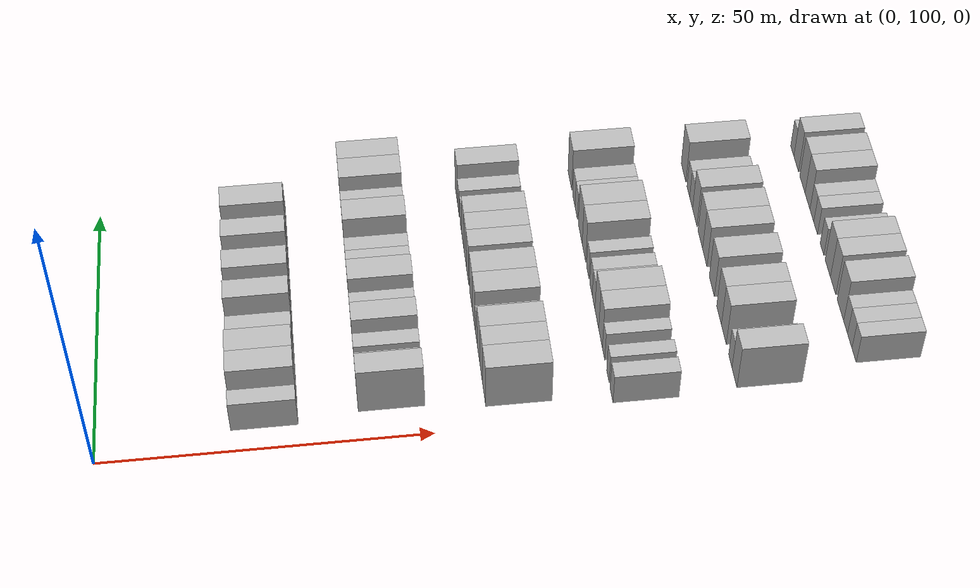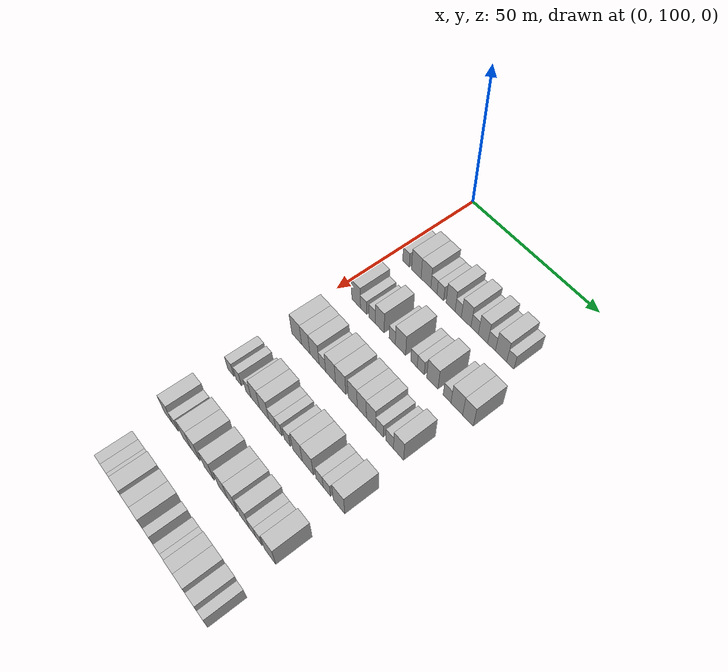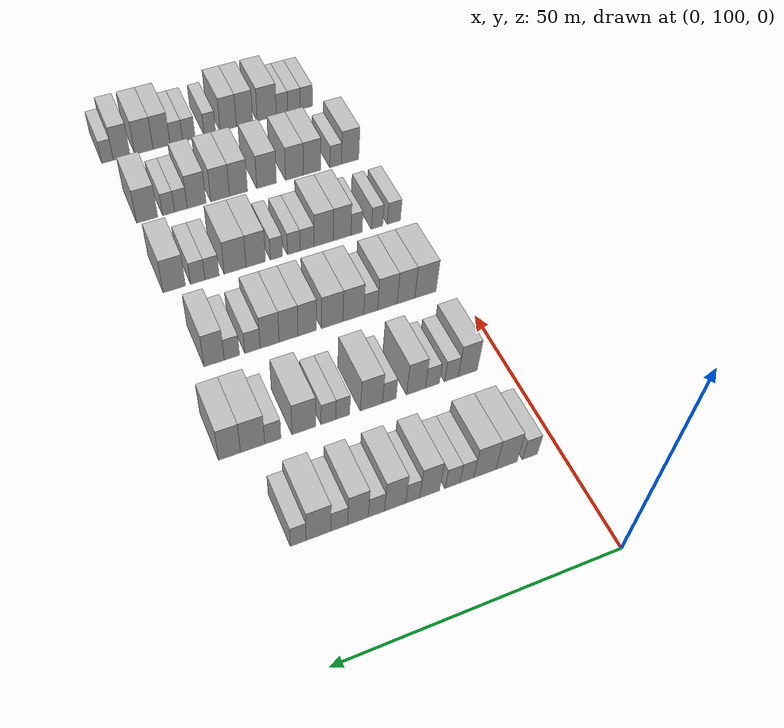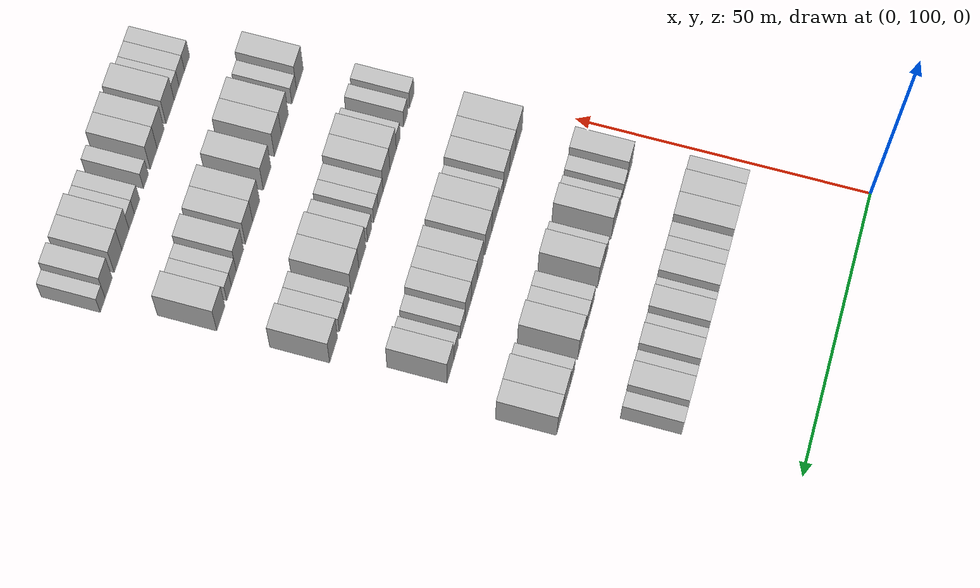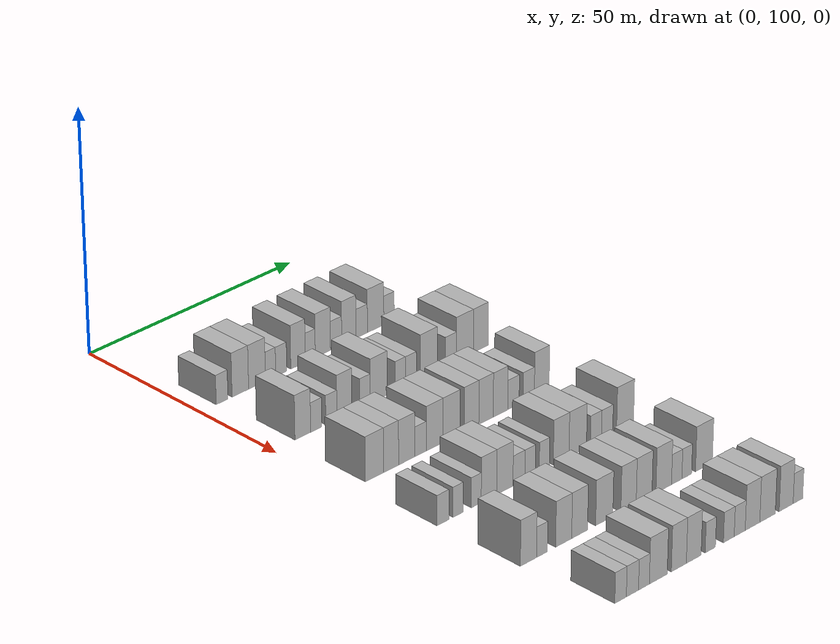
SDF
<sdf version="1.6">
 <world name="default">
  <model name="building_109">
   <static>1</static>
   <pose>25.0000 105.2955 0 0.000000 0.000000 0.000000</pose>
   <link name="link">
    <pose>0 0 3.00 0 0 0</pose>
    <collision name="collision"><geometry><box><size>10.0000 2.8303 6.0000</size></box></geometry></collision>
    <visual name="visual">
     <cast_shadows>0</cast_shadows>
     <geometry><box><size>10.0000 2.8303 6.0000</size></box></geometry>
     <material>
      <script>
       <uri>model://HANNAS_wall/materials/scripts</uri>
       <uri>model://HANNAS_wall/materials/textures</uri>
       <name>vrc/HANNAS_wall</name>
      </script>
     </material>
    </visual>
   </link>
  </model>
  <model name="building_110">
   <static>1</static>
   <pose>25.0000 109.7250 0 0.000000 0.000000 0.000000</pose>
   <link name="link">
    <pose>0 0 4.50 0 0 0</pose>
    <collision name="collision"><geometry><box><size>10.0000 4.0286 9.0000</size></box></geometry></collision>
    <visual name="visual">
     <cast_shadows>0</cast_shadows>
     <geometry><box><size>10.0000 4.0286 9.0000</size></box></geometry>
     <material>
      <script>
       <uri>model://HANNAS_wall/materials/scripts</uri>
       <uri>model://HANNAS_wall/materials/textures</uri>
       <name>vrc/HANNAS_wall</name>
      </script>
     </material>
    </visual>
   </link>
  </model>
  <model name="building_111">
   <static>1</static>
   <pose>25.0000 113.8031 0 0.000000 0.000000 0.000000</pose>
   <link name="link">
    <pose>0 0 4.50 0 0 0</pose>
    <collision name="collision"><geometry><box><size>10.0000 4.1276 9.0000</size></box></geometry></collision>
    <visual name="visual">
     <cast_shadows>0</cast_shadows>
     <geometry><box><size>10.0000 4.1276 9.0000</size></box></geometry>
     <material>
      <script>
       <uri>model://HANNAS_wall/materials/scripts</uri>
       <uri>model://HANNAS_wall/materials/textures</uri>
       <name>vrc/HANNAS_wall</name>
      </script>
     </material>
    </visual>
   </link>
  </model>
  <model name="building_112">
   <static>1</static>
   <pose>25.0000 117.1305 0 0.000000 0.000000 0.000000</pose>
   <link name="link">
    <pose>0 0 3.00 0 0 0</pose>
    <collision name="collision"><geometry><box><size>10.0000 2.5274 6.0000</size></box></geometry></collision>
    <visual name="visual">
     <cast_shadows>0</cast_shadows>
     <geometry><box><size>10.0000 2.5274 6.0000</size></box></geometry>
     <material>
      <script>
       <uri>model://HANNAS_wall/materials/scripts</uri>
       <uri>model://HANNAS_wall/materials/textures</uri>
       <name>vrc/HANNAS_wall</name>
      </script>
     </material>
    </visual>
   </link>
  </model>
  <model name="building_113">
   <static>1</static>
   <pose>25.0000 119.7565 0 0.000000 0.000000 0.000000</pose>
   <link name="link">
    <pose>0 0 3.00 0 0 0</pose>
    <collision name="collision"><geometry><box><size>10.0000 2.7247 6.0000</size></box></geometry></collision>
    <visual name="visual">
     <cast_shadows>0</cast_shadows>
     <geometry><box><size>10.0000 2.7247 6.0000</size></box></geometry>
     <material>
      <script>
       <uri>model://HANNAS_wall/materials/scripts</uri>
       <uri>model://HANNAS_wall/materials/textures</uri>
       <name>vrc/HANNAS_wall</name>
      </script>
     </material>
    </visual>
   </link>
  </model>
  <model name="building_114">
   <static>1</static>
   <pose>25.0000 123.9321 0 0.000000 0.000000 0.000000</pose>
   <link name="link">
    <pose>0 0 4.50 0 0 0</pose>
    <collision name="collision"><geometry><box><size>10.0000 3.6265 9.0000</size></box></geometry></collision>
    <visual name="visual">
     <cast_shadows>0</cast_shadows>
     <geometry><box><size>10.0000 3.6265 9.0000</size></box></geometry>
     <material>
      <script>
       <uri>model://HANNAS_wall/materials/scripts</uri>
       <uri>model://HANNAS_wall/materials/textures</uri>
       <name>vrc/HANNAS_wall</name>
      </script>
     </material>
    </visual>
   </link>
  </model>
  <model name="building_115">
   <static>1</static>
   <pose>25.0000 126.9914 0 0.000000 0.000000 0.000000</pose>
   <link name="link">
    <pose>0 0 3.00 0 0 0</pose>
    <collision name="collision"><geometry><box><size>10.0000 2.4921 6.0000</size></box></geometry></collision>
    <visual name="visual">
     <cast_shadows>0</cast_shadows>
     <geometry><box><size>10.0000 2.4921 6.0000</size></box></geometry>
     <material>
      <script>
       <uri>model://HANNAS_wall/materials/scripts</uri>
       <uri>model://HANNAS_wall/materials/textures</uri>
       <name>vrc/HANNAS_wall</name>
      </script>
     </material>
    </visual>
   </link>
  </model>
  <model name="building_116">
   <static>1</static>
   <pose>25.0000 130.1455 0 0.000000 0.000000 0.000000</pose>
   <link name="link">
    <pose>0 0 4.50 0 0 0</pose>
    <collision name="collision"><geometry><box><size>10.0000 3.8161 9.0000</size></box></geometry></collision>
    <visual name="visual">
     <cast_shadows>0</cast_shadows>
     <geometry><box><size>10.0000 3.8161 9.0000</size></box></geometry>
     <material>
      <script>
       <uri>model://HANNAS_wall/materials/scripts</uri>
       <uri>model://HANNAS_wall/materials/textures</uri>
       <name>vrc/HANNAS_wall</name>
      </script>
     </material>
    </visual>
   </link>
  </model>
  <model name="building_117">
   <static>1</static>
   <pose>25.0000 133.4818 0 0.000000 0.000000 0.000000</pose>
   <link name="link">
    <pose>0 0 3.00 0 0 0</pose>
    <collision name="collision"><geometry><box><size>10.0000 2.8565 6.0000</size></box></geometry></collision>
    <visual name="visual">
     <cast_shadows>0</cast_shadows>
     <geometry><box><size>10.0000 2.8565 6.0000</size></box></geometry>
     <material>
      <script>
       <uri>model://HANNAS_wall/materials/scripts</uri>
       <uri>model://HANNAS_wall/materials/textures</uri>
       <name>vrc/HANNAS_wall</name>
      </script>
     </material>
    </visual>
   </link>
  </model>
  <model name="building_118">
   <static>1</static>
   <pose>25.0000 136.7175 0 0.000000 0.000000 0.000000</pose>
   <link name="link">
    <pose>0 0 4.50 0 0 0</pose>
    <collision name="collision"><geometry><box><size>10.0000 3.6147 9.0000</size></box></geometry></collision>
    <visual name="visual">
     <cast_shadows>0</cast_shadows>
     <geometry><box><size>10.0000 3.6147 9.0000</size></box></geometry>
     <material>
      <script>
       <uri>model://HANNAS_wall/materials/scripts</uri>
       <uri>model://HANNAS_wall/materials/textures</uri>
       <name>vrc/HANNAS_wall</name>
      </script>
     </material>
    </visual>
   </link>
  </model>
  <model name="building_119">
   <static>1</static>
   <pose>25.0000 139.9865 0 0.000000 0.000000 0.000000</pose>
   <link name="link">
    <pose>0 0 3.00 0 0 0</pose>
    <collision name="collision"><geometry><box><size>10.0000 2.9234 6.0000</size></box></geometry></collision>
    <visual name="visual">
     <cast_shadows>0</cast_shadows>
     <geometry><box><size>10.0000 2.9234 6.0000</size></box></geometry>
     <material>
      <script>
       <uri>model://HANNAS_wall/materials/scripts</uri>
       <uri>model://HANNAS_wall/materials/textures</uri>
       <name>vrc/HANNAS_wall</name>
      </script>
     </material>
    </visual>
   </link>
  </model>
  <model name="building_120">
   <static>1</static>
   <pose>25.0000 143.5577 0 0.000000 0.000000 0.000000</pose>
   <link name="link">
    <pose>0 0 4.50 0 0 0</pose>
    <collision name="collision"><geometry><box><size>10.0000 4.2189 9.0000</size></box></geometry></collision>
    <visual name="visual">
     <cast_shadows>0</cast_shadows>
     <geometry><box><size>10.0000 4.2189 9.0000</size></box></geometry>
     <material>
      <script>
       <uri>model://HANNAS_wall/materials/scripts</uri>
       <uri>model://HANNAS_wall/materials/textures</uri>
       <name>vrc/HANNAS_wall</name>
      </script>
     </material>
    </visual>
   </link>
  </model>
  <model name="building_121">
   <static>1</static>
   <pose>25.0000 147.0125 0 0.000000 0.000000 0.000000</pose>
   <link name="link">
    <pose>0 0 3.00 0 0 0</pose>
    <collision name="collision"><geometry><box><size>10.0000 2.6907 6.0000</size></box></geometry></collision>
    <visual name="visual">
     <cast_shadows>0</cast_shadows>
     <geometry><box><size>10.0000 2.6907 6.0000</size></box></geometry>
     <material>
      <script>
       <uri>model://HANNAS_wall/materials/scripts</uri>
       <uri>model://HANNAS_wall/materials/textures</uri>
       <name>vrc/HANNAS_wall</name>
      </script>
     </material>
    </visual>
   </link>
  </model>
  <model name="building_291">
   <static>1</static>
   <pose>44.0000 107.2034 0 0.000000 0.000000 0.000000</pose>
   <link name="link">
    <pose>0 0 4.50 0 0 0</pose>
    <collision name="collision"><geometry><box><size>10.0000 3.7939 9.0000</size></box></geometry></collision>
    <visual name="visual">
     <cast_shadows>0</cast_shadows>
     <geometry><box><size>10.0000 3.7939 9.0000</size></box></geometry>
     <material>
      <script>
       <uri>model://HANNAS_wall/materials/scripts</uri>
       <uri>model://HANNAS_wall/materials/textures</uri>
       <name>vrc/HANNAS_wall</name>
      </script>
     </material>
    </visual>
   </link>
  </model>
  <model name="building_292">
   <static>1</static>
   <pose>44.0000 110.4479 0 0.000000 0.000000 0.000000</pose>
   <link name="link">
    <pose>0 0 3.00 0 0 0</pose>
    <collision name="collision"><geometry><box><size>10.0000 2.6950 6.0000</size></box></geometry></collision>
    <visual name="visual">
     <cast_shadows>0</cast_shadows>
     <geometry><box><size>10.0000 2.6950 6.0000</size></box></geometry>
     <material>
      <script>
       <uri>model://HANNAS_wall/materials/scripts</uri>
       <uri>model://HANNAS_wall/materials/textures</uri>
       <name>vrc/HANNAS_wall</name>
      </script>
     </material>
    </visual>
   </link>
  </model>
  <model name="building_293">
   <static>1</static>
   <pose>44.0000 114.1585 0 0.000000 0.000000 0.000000</pose>
   <link name="link">
    <pose>0 0 3.00 0 0 0</pose>
    <collision name="collision"><geometry><box><size>10.0000 2.7262 6.0000</size></box></geometry></collision>
    <visual name="visual">
     <cast_shadows>0</cast_shadows>
     <geometry><box><size>10.0000 2.7262 6.0000</size></box></geometry>
     <material>
      <script>
       <uri>model://HANNAS_wall/materials/scripts</uri>
       <uri>model://HANNAS_wall/materials/textures</uri>
       <name>vrc/HANNAS_wall</name>
      </script>
     </material>
    </visual>
   </link>
  </model>
  <model name="building_294">
   <static>1</static>
   <pose>44.0000 117.3571 0 0.000000 0.000000 0.000000</pose>
   <link name="link">
    <pose>0 0 4.50 0 0 0</pose>
    <collision name="collision"><geometry><box><size>10.0000 3.6711 9.0000</size></box></geometry></collision>
    <visual name="visual">
     <cast_shadows>0</cast_shadows>
     <geometry><box><size>10.0000 3.6711 9.0000</size></box></geometry>
     <material>
      <script>
       <uri>model://HANNAS_wall/materials/scripts</uri>
       <uri>model://HANNAS_wall/materials/textures</uri>
       <name>vrc/HANNAS_wall</name>
      </script>
     </material>
    </visual>
   </link>
  </model>
  <model name="building_295">
   <static>1</static>
   <pose>44.0000 122.4854 0 0.000000 0.000000 0.000000</pose>
   <link name="link">
    <pose>0 0 3.00 0 0 0</pose>
    <collision name="collision"><geometry><box><size>10.0000 2.5854 6.0000</size></box></geometry></collision>
    <visual name="visual">
     <cast_shadows>0</cast_shadows>
     <geometry><box><size>10.0000 2.5854 6.0000</size></box></geometry>
     <material>
      <script>
       <uri>model://HANNAS_wall/materials/scripts</uri>
       <uri>model://HANNAS_wall/materials/textures</uri>
       <name>vrc/HANNAS_wall</name>
      </script>
     </material>
    </visual>
   </link>
  </model>
  <model name="building_296">
   <static>1</static>
   <pose>44.0000 125.8849 0 0.000000 0.000000 0.000000</pose>
   <link name="link">
    <pose>0 0 4.50 0 0 0</pose>
    <collision name="collision"><geometry><box><size>10.0000 4.2137 9.0000</size></box></geometry></collision>
    <visual name="visual">
     <cast_shadows>0</cast_shadows>
     <geometry><box><size>10.0000 4.2137 9.0000</size></box></geometry>
     <material>
      <script>
       <uri>model://HANNAS_wall/materials/scripts</uri>
       <uri>model://HANNAS_wall/materials/textures</uri>
       <name>vrc/HANNAS_wall</name>
      </script>
     </material>
    </visual>
   </link>
  </model>
  <model name="building_297">
   <static>1</static>
   <pose>44.0000 131.2877 0 0.000000 0.000000 0.000000</pose>
   <link name="link">
    <pose>0 0 3.00 0 0 0</pose>
    <collision name="collision"><geometry><box><size>10.0000 2.5919 6.0000</size></box></geometry></collision>
    <visual name="visual">
     <cast_shadows>0</cast_shadows>
     <geometry><box><size>10.0000 2.5919 6.0000</size></box></geometry>
     <material>
      <script>
       <uri>model://HANNAS_wall/materials/scripts</uri>
       <uri>model://HANNAS_wall/materials/textures</uri>
       <name>vrc/HANNAS_wall</name>
      </script>
     </material>
    </visual>
   </link>
  </model>
  <model name="building_298">
   <static>1</static>
   <pose>44.0000 133.9536 0 0.000000 0.000000 0.000000</pose>
   <link name="link">
    <pose>0 0 3.00 0 0 0</pose>
    <collision name="collision"><geometry><box><size>10.0000 2.7399 6.0000</size></box></geometry></collision>
    <visual name="visual">
     <cast_shadows>0</cast_shadows>
     <geometry><box><size>10.0000 2.7399 6.0000</size></box></geometry>
     <material>
      <script>
       <uri>model://HANNAS_wall/materials/scripts</uri>
       <uri>model://HANNAS_wall/materials/textures</uri>
       <name>vrc/HANNAS_wall</name>
      </script>
     </material>
    </visual>
   </link>
  </model>
  <model name="building_299">
   <static>1</static>
   <pose>44.0000 138.4920 0 0.000000 0.000000 0.000000</pose>
   <link name="link">
    <pose>0 0 4.50 0 0 0</pose>
    <collision name="collision"><geometry><box><size>10.0000 4.3369 9.0000</size></box></geometry></collision>
    <visual name="visual">
     <cast_shadows>0</cast_shadows>
     <geometry><box><size>10.0000 4.3369 9.0000</size></box></geometry>
     <material>
      <script>
       <uri>model://HANNAS_wall/materials/scripts</uri>
       <uri>model://HANNAS_wall/materials/textures</uri>
       <name>vrc/HANNAS_wall</name>
      </script>
     </material>
    </visual>
   </link>
  </model>
  <model name="building_300">
   <static>1</static>
   <pose>44.0000 144.1302 0 0.000000 0.000000 0.000000</pose>
   <link name="link">
    <pose>0 0 3.00 0 0 0</pose>
    <collision name="collision"><geometry><box><size>10.0000 2.9395 6.0000</size></box></geometry></collision>
    <visual name="visual">
     <cast_shadows>0</cast_shadows>
     <geometry><box><size>10.0000 2.9395 6.0000</size></box></geometry>
     <material>
      <script>
       <uri>model://HANNAS_wall/materials/scripts</uri>
       <uri>model://HANNAS_wall/materials/textures</uri>
       <name>vrc/HANNAS_wall</name>
      </script>
     </material>
    </visual>
   </link>
  </model>
  <model name="building_301">
   <static>1</static>
   <pose>44.0000 147.7710 0 0.000000 0.000000 0.000000</pose>
   <link name="link">
    <pose>0 0 4.50 0 0 0</pose>
    <collision name="collision"><geometry><box><size>10.0000 4.3421 9.0000</size></box></geometry></collision>
    <visual name="visual">
     <cast_shadows>0</cast_shadows>
     <geometry><box><size>10.0000 4.3421 9.0000</size></box></geometry>
     <material>
      <script>
       <uri>model://HANNAS_wall/materials/scripts</uri>
       <uri>model://HANNAS_wall/materials/textures</uri>
       <name>vrc/HANNAS_wall</name>
      </script>
     </material>
    </visual>
   </link>
  </model>
  <model name="building_302">
   <static>1</static>
   <pose>44.0000 151.8860 0 0.000000 0.000000 0.000000</pose>
   <link name="link">
    <pose>0 0 4.50 0 0 0</pose>
    <collision name="collision"><geometry><box><size>10.0000 3.8879 9.0000</size></box></geometry></collision>
    <visual name="visual">
     <cast_shadows>0</cast_shadows>
     <geometry><box><size>10.0000 3.8879 9.0000</size></box></geometry>
     <material>
      <script>
       <uri>model://HANNAS_wall/materials/scripts</uri>
       <uri>model://HANNAS_wall/materials/textures</uri>
       <name>vrc/HANNAS_wall</name>
      </script>
     </material>
    </visual>
   </link>
  </model>
  <model name="building_459">
   <static>1</static>
   <pose>63.0000 106.3470 0 0.000000 0.000000 0.000000</pose>
   <link name="link">
    <pose>0 0 4.50 0 0 0</pose>
    <collision name="collision"><geometry><box><size>10.0000 4.4157 9.0000</size></box></geometry></collision>
    <visual name="visual">
     <cast_shadows>0</cast_shadows>
     <geometry><box><size>10.0000 4.4157 9.0000</size></box></geometry>
     <material>
      <script>
       <uri>model://HANNAS_wall/materials/scripts</uri>
       <uri>model://HANNAS_wall/materials/textures</uri>
       <name>vrc/HANNAS_wall</name>
      </script>
     </material>
    </visual>
   </link>
  </model>
  <model name="building_460">
   <static>1</static>
   <pose>63.0000 110.3841 0 0.000000 0.000000 0.000000</pose>
   <link name="link">
    <pose>0 0 4.50 0 0 0</pose>
    <collision name="collision"><geometry><box><size>10.0000 3.6585 9.0000</size></box></geometry></collision>
    <visual name="visual">
     <cast_shadows>0</cast_shadows>
     <geometry><box><size>10.0000 3.6585 9.0000</size></box></geometry>
     <material>
      <script>
       <uri>model://HANNAS_wall/materials/scripts</uri>
       <uri>model://HANNAS_wall/materials/textures</uri>
       <name>vrc/HANNAS_wall</name>
      </script>
     </material>
    </visual>
   </link>
  </model>
  <model name="building_461">
   <static>1</static>
   <pose>63.0000 114.2137 0 0.000000 0.000000 0.000000</pose>
   <link name="link">
    <pose>0 0 4.50 0 0 0</pose>
    <collision name="collision"><geometry><box><size>10.0000 4.0007 9.0000</size></box></geometry></collision>
    <visual name="visual">
     <cast_shadows>0</cast_shadows>
     <geometry><box><size>10.0000 4.0007 9.0000</size></box></geometry>
     <material>
      <script>
       <uri>model://HANNAS_wall/materials/scripts</uri>
       <uri>model://HANNAS_wall/materials/textures</uri>
       <name>vrc/HANNAS_wall</name>
      </script>
     </material>
    </visual>
   </link>
  </model>
  <model name="building_462">
   <static>1</static>
   <pose>63.0000 117.6177 0 0.000000 0.000000 0.000000</pose>
   <link name="link">
    <pose>0 0 3.00 0 0 0</pose>
    <collision name="collision"><geometry><box><size>10.0000 2.8072 6.0000</size></box></geometry></collision>
    <visual name="visual">
     <cast_shadows>0</cast_shadows>
     <geometry><box><size>10.0000 2.8072 6.0000</size></box></geometry>
     <material>
      <script>
       <uri>model://HANNAS_wall/materials/scripts</uri>
       <uri>model://HANNAS_wall/materials/textures</uri>
       <name>vrc/HANNAS_wall</name>
      </script>
     </material>
    </visual>
   </link>
  </model>
  <model name="building_463">
   <static>1</static>
   <pose>63.0000 121.1032 0 0.000000 0.000000 0.000000</pose>
   <link name="link">
    <pose>0 0 4.50 0 0 0</pose>
    <collision name="collision"><geometry><box><size>10.0000 4.1639 9.0000</size></box></geometry></collision>
    <visual name="visual">
     <cast_shadows>0</cast_shadows>
     <geometry><box><size>10.0000 4.1639 9.0000</size></box></geometry>
     <material>
      <script>
       <uri>model://HANNAS_wall/materials/scripts</uri>
       <uri>model://HANNAS_wall/materials/textures</uri>
       <name>vrc/HANNAS_wall</name>
      </script>
     </material>
    </visual>
   </link>
  </model>
  <model name="building_464">
   <static>1</static>
   <pose>63.0000 125.3115 0 0.000000 0.000000 0.000000</pose>
   <link name="link">
    <pose>0 0 4.50 0 0 0</pose>
    <collision name="collision"><geometry><box><size>10.0000 4.2528 9.0000</size></box></geometry></collision>
    <visual name="visual">
     <cast_shadows>0</cast_shadows>
     <geometry><box><size>10.0000 4.2528 9.0000</size></box></geometry>
     <material>
      <script>
       <uri>model://HANNAS_wall/materials/scripts</uri>
       <uri>model://HANNAS_wall/materials/textures</uri>
       <name>vrc/HANNAS_wall</name>
      </script>
     </material>
    </visual>
   </link>
  </model>
  <model name="building_465">
   <static>1</static>
   <pose>63.0000 130.2676 0 0.000000 0.000000 0.000000</pose>
   <link name="link">
    <pose>0 0 4.50 0 0 0</pose>
    <collision name="collision"><geometry><box><size>10.0000 3.6593 9.0000</size></box></geometry></collision>
    <visual name="visual">
     <cast_shadows>0</cast_shadows>
     <geometry><box><size>10.0000 3.6593 9.0000</size></box></geometry>
     <material>
      <script>
       <uri>model://HANNAS_wall/materials/scripts</uri>
       <uri>model://HANNAS_wall/materials/textures</uri>
       <name>vrc/HANNAS_wall</name>
      </script>
     </material>
    </visual>
   </link>
  </model>
  <model name="building_466">
   <static>1</static>
   <pose>63.0000 133.9238 0 0.000000 0.000000 0.000000</pose>
   <link name="link">
    <pose>0 0 4.50 0 0 0</pose>
    <collision name="collision"><geometry><box><size>10.0000 3.6532 9.0000</size></box></geometry></collision>
    <visual name="visual">
     <cast_shadows>0</cast_shadows>
     <geometry><box><size>10.0000 3.6532 9.0000</size></box></geometry>
     <material>
      <script>
       <uri>model://HANNAS_wall/materials/scripts</uri>
       <uri>model://HANNAS_wall/materials/textures</uri>
       <name>vrc/HANNAS_wall</name>
      </script>
     </material>
    </visual>
   </link>
  </model>
  <model name="building_467">
   <static>1</static>
   <pose>63.0000 137.5816 0 0.000000 0.000000 0.000000</pose>
   <link name="link">
    <pose>0 0 4.50 0 0 0</pose>
    <collision name="collision"><geometry><box><size>10.0000 3.6623 9.0000</size></box></geometry></collision>
    <visual name="visual">
     <cast_shadows>0</cast_shadows>
     <geometry><box><size>10.0000 3.6623 9.0000</size></box></geometry>
     <material>
      <script>
       <uri>model://HANNAS_wall/materials/scripts</uri>
       <uri>model://HANNAS_wall/materials/textures</uri>
       <name>vrc/HANNAS_wall</name>
      </script>
     </material>
    </visual>
   </link>
  </model>
  <model name="building_468">
   <static>1</static>
   <pose>63.0000 140.8815 0 0.000000 0.000000 0.000000</pose>
   <link name="link">
    <pose>0 0 3.00 0 0 0</pose>
    <collision name="collision"><geometry><box><size>10.0000 2.9375 6.0000</size></box></geometry></collision>
    <visual name="visual">
     <cast_shadows>0</cast_shadows>
     <geometry><box><size>10.0000 2.9375 6.0000</size></box></geometry>
     <material>
      <script>
       <uri>model://HANNAS_wall/materials/scripts</uri>
       <uri>model://HANNAS_wall/materials/textures</uri>
       <name>vrc/HANNAS_wall</name>
      </script>
     </material>
    </visual>
   </link>
  </model>
  <model name="building_469">
   <static>1</static>
   <pose>63.0000 144.8050 0 0.000000 0.000000 0.000000</pose>
   <link name="link">
    <pose>0 0 3.00 0 0 0</pose>
    <collision name="collision"><geometry><box><size>10.0000 2.9095 6.0000</size></box></geometry></collision>
    <visual name="visual">
     <cast_shadows>0</cast_shadows>
     <geometry><box><size>10.0000 2.9095 6.0000</size></box></geometry>
     <material>
      <script>
       <uri>model://HANNAS_wall/materials/scripts</uri>
       <uri>model://HANNAS_wall/materials/textures</uri>
       <name>vrc/HANNAS_wall</name>
      </script>
     </material>
    </visual>
   </link>
  </model>
  <model name="building_470">
   <static>1</static>
   <pose>63.0000 148.1662 0 0.000000 0.000000 0.000000</pose>
   <link name="link">
    <pose>0 0 4.50 0 0 0</pose>
    <collision name="collision"><geometry><box><size>10.0000 3.8130 9.0000</size></box></geometry></collision>
    <visual name="visual">
     <cast_shadows>0</cast_shadows>
     <geometry><box><size>10.0000 3.8130 9.0000</size></box></geometry>
     <material>
      <script>
       <uri>model://HANNAS_wall/materials/scripts</uri>
       <uri>model://HANNAS_wall/materials/textures</uri>
       <name>vrc/HANNAS_wall</name>
      </script>
     </material>
    </visual>
   </link>
  </model>
  <model name="building_638">
   <static>1</static>
   <pose>82.0000 104.1277 0 0.000000 0.000000 0.000000</pose>
   <link name="link">
    <pose>0 0 3.00 0 0 0</pose>
    <collision name="collision"><geometry><box><size>10.0000 2.8570 6.0000</size></box></geometry></collision>
    <visual name="visual">
     <cast_shadows>0</cast_shadows>
     <geometry><box><size>10.0000 2.8570 6.0000</size></box></geometry>
     <material>
      <script>
       <uri>model://HANNAS_wall/materials/scripts</uri>
       <uri>model://HANNAS_wall/materials/textures</uri>
       <name>vrc/HANNAS_wall</name>
      </script>
     </material>
    </visual>
   </link>
  </model>
  <model name="building_639">
   <static>1</static>
   <pose>82.0000 107.7839 0 0.000000 0.000000 0.000000</pose>
   <link name="link">
    <pose>0 0 3.00 0 0 0</pose>
    <collision name="collision"><geometry><box><size>10.0000 2.4553 6.0000</size></box></geometry></collision>
    <visual name="visual">
     <cast_shadows>0</cast_shadows>
     <geometry><box><size>10.0000 2.4553 6.0000</size></box></geometry>
     <material>
      <script>
       <uri>model://HANNAS_wall/materials/scripts</uri>
       <uri>model://HANNAS_wall/materials/textures</uri>
       <name>vrc/HANNAS_wall</name>
      </script>
     </material>
    </visual>
   </link>
  </model>
  <model name="building_640">
   <static>1</static>
   <pose>82.0000 112.2152 0 0.000000 0.000000 0.000000</pose>
   <link name="link">
    <pose>0 0 3.00 0 0 0</pose>
    <collision name="collision"><geometry><box><size>10.0000 2.4074 6.0000</size></box></geometry></collision>
    <visual name="visual">
     <cast_shadows>0</cast_shadows>
     <geometry><box><size>10.0000 2.4074 6.0000</size></box></geometry>
     <material>
      <script>
       <uri>model://HANNAS_wall/materials/scripts</uri>
       <uri>model://HANNAS_wall/materials/textures</uri>
       <name>vrc/HANNAS_wall</name>
      </script>
     </material>
    </visual>
   </link>
  </model>
  <model name="building_641">
   <static>1</static>
   <pose>82.0000 115.3138 0 0.000000 0.000000 0.000000</pose>
   <link name="link">
    <pose>0 0 4.50 0 0 0</pose>
    <collision name="collision"><geometry><box><size>10.0000 3.7897 9.0000</size></box></geometry></collision>
    <visual name="visual">
     <cast_shadows>0</cast_shadows>
     <geometry><box><size>10.0000 3.7897 9.0000</size></box></geometry>
     <material>
      <script>
       <uri>model://HANNAS_wall/materials/scripts</uri>
       <uri>model://HANNAS_wall/materials/textures</uri>
       <name>vrc/HANNAS_wall</name>
      </script>
     </material>
    </visual>
   </link>
  </model>
  <model name="building_642">
   <static>1</static>
   <pose>82.0000 119.2196 0 0.000000 0.000000 0.000000</pose>
   <link name="link">
    <pose>0 0 4.50 0 0 0</pose>
    <collision name="collision"><geometry><box><size>10.0000 4.0219 9.0000</size></box></geometry></collision>
    <visual name="visual">
     <cast_shadows>0</cast_shadows>
     <geometry><box><size>10.0000 4.0219 9.0000</size></box></geometry>
     <material>
      <script>
       <uri>model://HANNAS_wall/materials/scripts</uri>
       <uri>model://HANNAS_wall/materials/textures</uri>
       <name>vrc/HANNAS_wall</name>
      </script>
     </material>
    </visual>
   </link>
  </model>
  <model name="building_643">
   <static>1</static>
   <pose>82.0000 122.7008 0 0.000000 0.000000 0.000000</pose>
   <link name="link">
    <pose>0 0 3.00 0 0 0</pose>
    <collision name="collision"><geometry><box><size>10.0000 2.9405 6.0000</size></box></geometry></collision>
    <visual name="visual">
     <cast_shadows>0</cast_shadows>
     <geometry><box><size>10.0000 2.9405 6.0000</size></box></geometry>
     <material>
      <script>
       <uri>model://HANNAS_wall/materials/scripts</uri>
       <uri>model://HANNAS_wall/materials/textures</uri>
       <name>vrc/HANNAS_wall</name>
      </script>
     </material>
    </visual>
   </link>
  </model>
  <model name="building_644">
   <static>1</static>
   <pose>82.0000 125.4743 0 0.000000 0.000000 0.000000</pose>
   <link name="link">
    <pose>0 0 3.00 0 0 0</pose>
    <collision name="collision"><geometry><box><size>10.0000 2.6064 6.0000</size></box></geometry></collision>
    <visual name="visual">
     <cast_shadows>0</cast_shadows>
     <geometry><box><size>10.0000 2.6064 6.0000</size></box></geometry>
     <material>
      <script>
       <uri>model://HANNAS_wall/materials/scripts</uri>
       <uri>model://HANNAS_wall/materials/textures</uri>
       <name>vrc/HANNAS_wall</name>
      </script>
     </material>
    </visual>
   </link>
  </model>
  <model name="building_645">
   <static>1</static>
   <pose>82.0000 129.0405 0 0.000000 0.000000 0.000000</pose>
   <link name="link">
    <pose>0 0 3.00 0 0 0</pose>
    <collision name="collision"><geometry><box><size>10.0000 2.5259 6.0000</size></box></geometry></collision>
    <visual name="visual">
     <cast_shadows>0</cast_shadows>
     <geometry><box><size>10.0000 2.5259 6.0000</size></box></geometry>
     <material>
      <script>
       <uri>model://HANNAS_wall/materials/scripts</uri>
       <uri>model://HANNAS_wall/materials/textures</uri>
       <name>vrc/HANNAS_wall</name>
      </script>
     </material>
    </visual>
   </link>
  </model>
  <model name="building_646">
   <static>1</static>
   <pose>82.0000 133.2848 0 0.000000 0.000000 0.000000</pose>
   <link name="link">
    <pose>0 0 4.50 0 0 0</pose>
    <collision name="collision"><geometry><box><size>10.0000 3.9629 9.0000</size></box></geometry></collision>
    <visual name="visual">
     <cast_shadows>0</cast_shadows>
     <geometry><box><size>10.0000 3.9629 9.0000</size></box></geometry>
     <material>
      <script>
       <uri>model://HANNAS_wall/materials/scripts</uri>
       <uri>model://HANNAS_wall/materials/textures</uri>
       <name>vrc/HANNAS_wall</name>
      </script>
     </material>
    </visual>
   </link>
  </model>
  <model name="building_647">
   <static>1</static>
   <pose>82.0000 137.4890 0 0.000000 0.000000 0.000000</pose>
   <link name="link">
    <pose>0 0 4.50 0 0 0</pose>
    <collision name="collision"><geometry><box><size>10.0000 4.4456 9.0000</size></box></geometry></collision>
    <visual name="visual">
     <cast_shadows>0</cast_shadows>
     <geometry><box><size>10.0000 4.4456 9.0000</size></box></geometry>
     <material>
      <script>
       <uri>model://HANNAS_wall/materials/scripts</uri>
       <uri>model://HANNAS_wall/materials/textures</uri>
       <name>vrc/HANNAS_wall</name>
      </script>
     </material>
    </visual>
   </link>
  </model>
  <model name="building_648">
   <static>1</static>
   <pose>82.0000 142.1342 0 0.000000 0.000000 0.000000</pose>
   <link name="link">
    <pose>0 0 3.00 0 0 0</pose>
    <collision name="collision"><geometry><box><size>10.0000 2.8447 6.0000</size></box></geometry></collision>
    <visual name="visual">
     <cast_shadows>0</cast_shadows>
     <geometry><box><size>10.0000 2.8447 6.0000</size></box></geometry>
     <material>
      <script>
       <uri>model://HANNAS_wall/materials/scripts</uri>
       <uri>model://HANNAS_wall/materials/textures</uri>
       <name>vrc/HANNAS_wall</name>
      </script>
     </material>
    </visual>
   </link>
  </model>
  <model name="building_649">
   <static>1</static>
   <pose>82.0000 145.0003 0 0.000000 0.000000 0.000000</pose>
   <link name="link">
    <pose>0 0 3.00 0 0 0</pose>
    <collision name="collision"><geometry><box><size>10.0000 2.8876 6.0000</size></box></geometry></collision>
    <visual name="visual">
     <cast_shadows>0</cast_shadows>
     <geometry><box><size>10.0000 2.8876 6.0000</size></box></geometry>
     <material>
      <script>
       <uri>model://HANNAS_wall/materials/scripts</uri>
       <uri>model://HANNAS_wall/materials/textures</uri>
       <name>vrc/HANNAS_wall</name>
      </script>
     </material>
    </visual>
   </link>
  </model>
  <model name="building_650">
   <static>1</static>
   <pose>82.0000 149.6500 0 0.000000 0.000000 0.000000</pose>
   <link name="link">
    <pose>0 0 4.50 0 0 0</pose>
    <collision name="collision"><geometry><box><size>10.0000 4.4118 9.0000</size></box></geometry></collision>
    <visual name="visual">
     <cast_shadows>0</cast_shadows>
     <geometry><box><size>10.0000 4.4118 9.0000</size></box></geometry>
     <material>
      <script>
       <uri>model://HANNAS_wall/materials/scripts</uri>
       <uri>model://HANNAS_wall/materials/textures</uri>
       <name>vrc/HANNAS_wall</name>
      </script>
     </material>
    </visual>
   </link>
  </model>
  <model name="building_811">
   <static>1</static>
   <pose>101.0000 105.4215 0 0.000000 0.000000 0.000000</pose>
   <link name="link">
    <pose>0 0 4.50 0 0 0</pose>
    <collision name="collision"><geometry><box><size>10.0000 3.9096 9.0000</size></box></geometry></collision>
    <visual name="visual">
     <cast_shadows>0</cast_shadows>
     <geometry><box><size>10.0000 3.9096 9.0000</size></box></geometry>
     <material>
      <script>
       <uri>model://HANNAS_wall/materials/scripts</uri>
       <uri>model://HANNAS_wall/materials/textures</uri>
       <name>vrc/HANNAS_wall</name>
      </script>
     </material>
    </visual>
   </link>
  </model>
  <model name="building_812">
   <static>1</static>
   <pose>101.0000 108.6895 0 0.000000 0.000000 0.000000</pose>
   <link name="link">
    <pose>0 0 3.00 0 0 0</pose>
    <collision name="collision"><geometry><box><size>10.0000 2.6263 6.0000</size></box></geometry></collision>
    <visual name="visual">
     <cast_shadows>0</cast_shadows>
     <geometry><box><size>10.0000 2.6263 6.0000</size></box></geometry>
     <material>
      <script>
       <uri>model://HANNAS_wall/materials/scripts</uri>
       <uri>model://HANNAS_wall/materials/textures</uri>
       <name>vrc/HANNAS_wall</name>
      </script>
     </material>
    </visual>
   </link>
  </model>
  <model name="building_813">
   <static>1</static>
   <pose>101.0000 113.9694 0 0.000000 0.000000 0.000000</pose>
   <link name="link">
    <pose>0 0 4.50 0 0 0</pose>
    <collision name="collision"><geometry><box><size>10.0000 3.9336 9.0000</size></box></geometry></collision>
    <visual name="visual">
     <cast_shadows>0</cast_shadows>
     <geometry><box><size>10.0000 3.9336 9.0000</size></box></geometry>
     <material>
      <script>
       <uri>model://HANNAS_wall/materials/scripts</uri>
       <uri>model://HANNAS_wall/materials/textures</uri>
       <name>vrc/HANNAS_wall</name>
      </script>
     </material>
    </visual>
   </link>
  </model>
  <model name="building_814">
   <static>1</static>
   <pose>101.0000 117.8913 0 0.000000 0.000000 0.000000</pose>
   <link name="link">
    <pose>0 0 4.50 0 0 0</pose>
    <collision name="collision"><geometry><box><size>10.0000 3.9102 9.0000</size></box></geometry></collision>
    <visual name="visual">
     <cast_shadows>0</cast_shadows>
     <geometry><box><size>10.0000 3.9102 9.0000</size></box></geometry>
     <material>
      <script>
       <uri>model://HANNAS_wall/materials/scripts</uri>
       <uri>model://HANNAS_wall/materials/textures</uri>
       <name>vrc/HANNAS_wall</name>
      </script>
     </material>
    </visual>
   </link>
  </model>
  <model name="building_815">
   <static>1</static>
   <pose>101.0000 123.9876 0 0.000000 0.000000 0.000000</pose>
   <link name="link">
    <pose>0 0 4.50 0 0 0</pose>
    <collision name="collision"><geometry><box><size>10.0000 4.2824 9.0000</size></box></geometry></collision>
    <visual name="visual">
     <cast_shadows>0</cast_shadows>
     <geometry><box><size>10.0000 4.2824 9.0000</size></box></geometry>
     <material>
      <script>
       <uri>model://HANNAS_wall/materials/scripts</uri>
       <uri>model://HANNAS_wall/materials/textures</uri>
       <name>vrc/HANNAS_wall</name>
      </script>
     </material>
    </visual>
   </link>
  </model>
  <model name="building_816">
   <static>1</static>
   <pose>101.0000 130.0575 0 0.000000 0.000000 0.000000</pose>
   <link name="link">
    <pose>0 0 4.50 0 0 0</pose>
    <collision name="collision"><geometry><box><size>10.0000 3.8574 9.0000</size></box></geometry></collision>
    <visual name="visual">
     <cast_shadows>0</cast_shadows>
     <geometry><box><size>10.0000 3.8574 9.0000</size></box></geometry>
     <material>
      <script>
       <uri>model://HANNAS_wall/materials/scripts</uri>
       <uri>model://HANNAS_wall/materials/textures</uri>
       <name>vrc/HANNAS_wall</name>
      </script>
     </material>
    </visual>
   </link>
  </model>
  <model name="building_817">
   <static>1</static>
   <pose>101.0000 133.9863 0 0.000000 0.000000 0.000000</pose>
   <link name="link">
    <pose>0 0 4.50 0 0 0</pose>
    <collision name="collision"><geometry><box><size>10.0000 4.0000 9.0000</size></box></geometry></collision>
    <visual name="visual">
     <cast_shadows>0</cast_shadows>
     <geometry><box><size>10.0000 4.0000 9.0000</size></box></geometry>
     <material>
      <script>
       <uri>model://HANNAS_wall/materials/scripts</uri>
       <uri>model://HANNAS_wall/materials/textures</uri>
       <name>vrc/HANNAS_wall</name>
      </script>
     </material>
    </visual>
   </link>
  </model>
  <model name="building_818">
   <static>1</static>
   <pose>101.0000 138.9777 0 0.000000 0.000000 0.000000</pose>
   <link name="link">
    <pose>0 0 4.50 0 0 0</pose>
    <collision name="collision"><geometry><box><size>10.0000 3.9830 9.0000</size></box></geometry></collision>
    <visual name="visual">
     <cast_shadows>0</cast_shadows>
     <geometry><box><size>10.0000 3.9830 9.0000</size></box></geometry>
     <material>
      <script>
       <uri>model://HANNAS_wall/materials/scripts</uri>
       <uri>model://HANNAS_wall/materials/textures</uri>
       <name>vrc/HANNAS_wall</name>
      </script>
     </material>
    </visual>
   </link>
  </model>
  <model name="building_819">
   <static>1</static>
   <pose>101.0000 142.3025 0 0.000000 0.000000 0.000000</pose>
   <link name="link">
    <pose>0 0 3.00 0 0 0</pose>
    <collision name="collision"><geometry><box><size>10.0000 2.6665 6.0000</size></box></geometry></collision>
    <visual name="visual">
     <cast_shadows>0</cast_shadows>
     <geometry><box><size>10.0000 2.6665 6.0000</size></box></geometry>
     <material>
      <script>
       <uri>model://HANNAS_wall/materials/scripts</uri>
       <uri>model://HANNAS_wall/materials/textures</uri>
       <name>vrc/HANNAS_wall</name>
      </script>
     </material>
    </visual>
   </link>
  </model>
  <model name="building_820">
   <static>1</static>
   <pose>101.0000 144.8913 0 0.000000 0.000000 0.000000</pose>
   <link name="link">
    <pose>0 0 3.00 0 0 0</pose>
    <collision name="collision"><geometry><box><size>10.0000 2.5111 6.0000</size></box></geometry></collision>
    <visual name="visual">
     <cast_shadows>0</cast_shadows>
     <geometry><box><size>10.0000 2.5111 6.0000</size></box></geometry>
     <material>
      <script>
       <uri>model://HANNAS_wall/materials/scripts</uri>
       <uri>model://HANNAS_wall/materials/textures</uri>
       <name>vrc/HANNAS_wall</name>
      </script>
     </material>
    </visual>
   </link>
  </model>
  <model name="building_821">
   <static>1</static>
   <pose>101.0000 149.3336 0 0.000000 0.000000 0.000000</pose>
   <link name="link">
    <pose>0 0 4.50 0 0 0</pose>
    <collision name="collision"><geometry><box><size>10.0000 4.3736 9.0000</size></box></geometry></collision>
    <visual name="visual">
     <cast_shadows>0</cast_shadows>
     <geometry><box><size>10.0000 4.3736 9.0000</size></box></geometry>
     <material>
      <script>
       <uri>model://HANNAS_wall/materials/scripts</uri>
       <uri>model://HANNAS_wall/materials/textures</uri>
       <name>vrc/HANNAS_wall</name>
      </script>
     </material>
    </visual>
   </link>
  </model>
  <model name="building_977">
   <static>1</static>
   <pose>120.0000 107.6443 0 0.000000 0.000000 0.000000</pose>
   <link name="link">
    <pose>0 0 3.00 0 0 0</pose>
    <collision name="collision"><geometry><box><size>10.0000 2.8198 6.0000</size></box></geometry></collision>
    <visual name="visual">
     <cast_shadows>0</cast_shadows>
     <geometry><box><size>10.0000 2.8198 6.0000</size></box></geometry>
     <material>
      <script>
       <uri>model://HANNAS_wall/materials/scripts</uri>
       <uri>model://HANNAS_wall/materials/textures</uri>
       <name>vrc/HANNAS_wall</name>
      </script>
     </material>
    </visual>
   </link>
  </model>
  <model name="building_978">
   <static>1</static>
   <pose>120.0000 110.5302 0 0.000000 0.000000 0.000000</pose>
   <link name="link">
    <pose>0 0 3.00 0 0 0</pose>
    <collision name="collision"><geometry><box><size>10.0000 2.9520 6.0000</size></box></geometry></collision>
    <visual name="visual">
     <cast_shadows>0</cast_shadows>
     <geometry><box><size>10.0000 2.9520 6.0000</size></box></geometry>
     <material>
      <script>
       <uri>model://HANNAS_wall/materials/scripts</uri>
       <uri>model://HANNAS_wall/materials/textures</uri>
       <name>vrc/HANNAS_wall</name>
      </script>
     </material>
    </visual>
   </link>
  </model>
  <model name="building_979">
   <static>1</static>
   <pose>120.0000 113.3282 0 0.000000 0.000000 0.000000</pose>
   <link name="link">
    <pose>0 0 3.00 0 0 0</pose>
    <collision name="collision"><geometry><box><size>10.0000 2.6441 6.0000</size></box></geometry></collision>
    <visual name="visual">
     <cast_shadows>0</cast_shadows>
     <geometry><box><size>10.0000 2.6441 6.0000</size></box></geometry>
     <material>
      <script>
       <uri>model://HANNAS_wall/materials/scripts</uri>
       <uri>model://HANNAS_wall/materials/textures</uri>
       <name>vrc/HANNAS_wall</name>
      </script>
     </material>
    </visual>
   </link>
  </model>
  <model name="building_980">
   <static>1</static>
   <pose>120.0000 116.8570 0 0.000000 0.000000 0.000000</pose>
   <link name="link">
    <pose>0 0 4.50 0 0 0</pose>
    <collision name="collision"><geometry><box><size>10.0000 4.4135 9.0000</size></box></geometry></collision>
    <visual name="visual">
     <cast_shadows>0</cast_shadows>
     <geometry><box><size>10.0000 4.4135 9.0000</size></box></geometry>
     <material>
      <script>
       <uri>model://HANNAS_wall/materials/scripts</uri>
       <uri>model://HANNAS_wall/materials/textures</uri>
       <name>vrc/HANNAS_wall</name>
      </script>
     </material>
    </visual>
   </link>
  </model>
  <model name="building_981">
   <static>1</static>
   <pose>120.0000 121.9352 0 0.000000 0.000000 0.000000</pose>
   <link name="link">
    <pose>0 0 4.50 0 0 0</pose>
    <collision name="collision"><geometry><box><size>10.0000 3.7429 9.0000</size></box></geometry></collision>
    <visual name="visual">
     <cast_shadows>0</cast_shadows>
     <geometry><box><size>10.0000 3.7429 9.0000</size></box></geometry>
     <material>
      <script>
       <uri>model://HANNAS_wall/materials/scripts</uri>
       <uri>model://HANNAS_wall/materials/textures</uri>
       <name>vrc/HANNAS_wall</name>
      </script>
     </material>
    </visual>
   </link>
  </model>
  <model name="building_982">
   <static>1</static>
   <pose>120.0000 125.6567 0 0.000000 0.000000 0.000000</pose>
   <link name="link">
    <pose>0 0 4.50 0 0 0</pose>
    <collision name="collision"><geometry><box><size>10.0000 3.7002 9.0000</size></box></geometry></collision>
    <visual name="visual">
     <cast_shadows>0</cast_shadows>
     <geometry><box><size>10.0000 3.7002 9.0000</size></box></geometry>
     <material>
      <script>
       <uri>model://HANNAS_wall/materials/scripts</uri>
       <uri>model://HANNAS_wall/materials/textures</uri>
       <name>vrc/HANNAS_wall</name>
      </script>
     </material>
    </visual>
   </link>
  </model>
  <model name="building_983">
   <static>1</static>
   <pose>120.0000 129.8057 0 0.000000 0.000000 0.000000</pose>
   <link name="link">
    <pose>0 0 3.00 0 0 0</pose>
    <collision name="collision"><geometry><box><size>10.0000 2.5978 6.0000</size></box></geometry></collision>
    <visual name="visual">
     <cast_shadows>0</cast_shadows>
     <geometry><box><size>10.0000 2.5978 6.0000</size></box></geometry>
     <material>
      <script>
       <uri>model://HANNAS_wall/materials/scripts</uri>
       <uri>model://HANNAS_wall/materials/textures</uri>
       <name>vrc/HANNAS_wall</name>
      </script>
     </material>
    </visual>
   </link>
  </model>
  <model name="building_984">
   <static>1</static>
   <pose>120.0000 134.4809 0 0.000000 0.000000 0.000000</pose>
   <link name="link">
    <pose>0 0 3.00 0 0 0</pose>
    <collision name="collision"><geometry><box><size>10.0000 2.7525 6.0000</size></box></geometry></collision>
    <visual name="visual">
     <cast_shadows>0</cast_shadows>
     <geometry><box><size>10.0000 2.7525 6.0000</size></box></geometry>
     <material>
      <script>
       <uri>model://HANNAS_wall/materials/scripts</uri>
       <uri>model://HANNAS_wall/materials/textures</uri>
       <name>vrc/HANNAS_wall</name>
      </script>
     </material>
    </visual>
   </link>
  </model>
  <model name="building_985">
   <static>1</static>
   <pose>120.0000 137.2580 0 0.000000 0.000000 0.000000</pose>
   <link name="link">
    <pose>0 0 3.00 0 0 0</pose>
    <collision name="collision"><geometry><box><size>10.0000 2.8018 6.0000</size></box></geometry></collision>
    <visual name="visual">
     <cast_shadows>0</cast_shadows>
     <geometry><box><size>10.0000 2.8018 6.0000</size></box></geometry>
     <material>
      <script>
       <uri>model://HANNAS_wall/materials/scripts</uri>
       <uri>model://HANNAS_wall/materials/textures</uri>
       <name>vrc/HANNAS_wall</name>
      </script>
     </material>
    </visual>
   </link>
  </model>
  <model name="building_986">
   <static>1</static>
   <pose>120.0000 140.5276 0 0.000000 0.000000 0.000000</pose>
   <link name="link">
    <pose>0 0 4.50 0 0 0</pose>
    <collision name="collision"><geometry><box><size>10.0000 3.7374 9.0000</size></box></geometry></collision>
    <visual name="visual">
     <cast_shadows>0</cast_shadows>
     <geometry><box><size>10.0000 3.7374 9.0000</size></box></geometry>
     <material>
      <script>
       <uri>model://HANNAS_wall/materials/scripts</uri>
       <uri>model://HANNAS_wall/materials/textures</uri>
       <name>vrc/HANNAS_wall</name>
      </script>
     </material>
    </visual>
   </link>
  </model>
  <model name="building_987">
   <static>1</static>
   <pose>120.0000 144.3980 0 0.000000 0.000000 0.000000</pose>
   <link name="link">
    <pose>0 0 4.50 0 0 0</pose>
    <collision name="collision"><geometry><box><size>10.0000 4.0034 9.0000</size></box></geometry></collision>
    <visual name="visual">
     <cast_shadows>0</cast_shadows>
     <geometry><box><size>10.0000 4.0034 9.0000</size></box></geometry>
     <material>
      <script>
       <uri>model://HANNAS_wall/materials/scripts</uri>
       <uri>model://HANNAS_wall/materials/textures</uri>
       <name>vrc/HANNAS_wall</name>
      </script>
     </material>
    </visual>
   </link>
  </model>
  <model name="building_988">
   <static>1</static>
   <pose>120.0000 149.2187 0 0.000000 0.000000 0.000000</pose>
   <link name="link">
    <pose>0 0 4.50 0 0 0</pose>
    <collision name="collision"><geometry><box><size>10.0000 3.6380 9.0000</size></box></geometry></collision>
    <visual name="visual">
     <cast_shadows>0</cast_shadows>
     <geometry><box><size>10.0000 3.6380 9.0000</size></box></geometry>
     <material>
      <script>
       <uri>model://HANNAS_wall/materials/scripts</uri>
       <uri>model://HANNAS_wall/materials/textures</uri>
       <name>vrc/HANNAS_wall</name>
      </script>
     </material>
    </visual>
   </link>
  </model>
  <model name="building_989">
   <static>1</static>
   <pose>120.0000 152.2888 0 0.000000 0.000000 0.000000</pose>
   <link name="link">
    <pose>0 0 3.00 0 0 0</pose>
    <collision name="collision"><geometry><box><size>10.0000 2.5022 6.0000</size></box></geometry></collision>
    <visual name="visual">
     <cast_shadows>0</cast_shadows>
     <geometry><box><size>10.0000 2.5022 6.0000</size></box></geometry>
     <material>
      <script>
       <uri>model://HANNAS_wall/materials/scripts</uri>
       <uri>model://HANNAS_wall/materials/textures</uri>
       <name>vrc/HANNAS_wall</name>
      </script>
     </material>
    </visual>
   </link>
  </model>
 </world>
</sdf>
